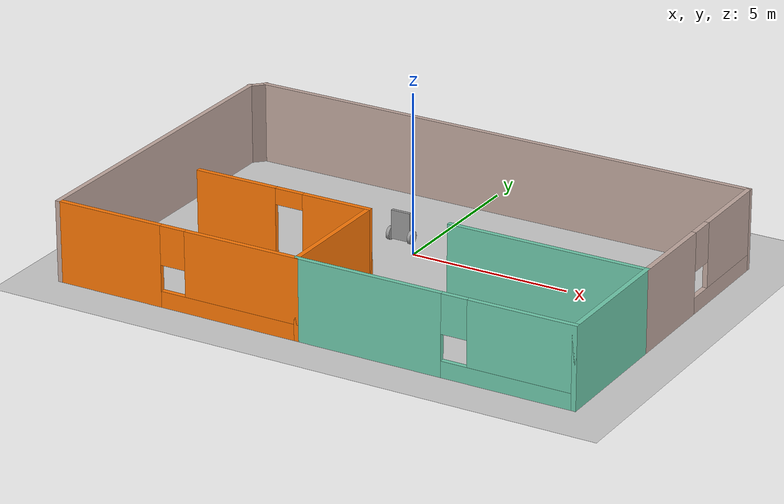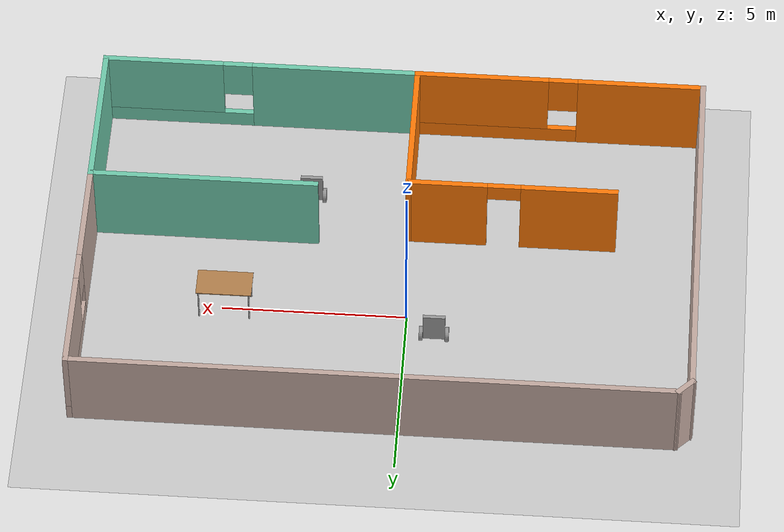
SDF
<sdf version="1.6">
 <world name="default">
  <plugin name="welcome_message" filename="libwelcome_message.so"/>
  <light name="sun" type="directional">
   <pose>0 0 10 0 -0 0</pose>
   <diffuse>0.8 0.8 0.8 1</diffuse>
   <specular>0.1 0.1 0.1 1</specular>
   <attenuation>
    <range>1000</range>
    <constant>0.9</constant>
    <linear>0.01</linear>
    <quadratic>0.001</quadratic>
   </attenuation>
   <direction>-0.5 0.5 -1</direction>
  </light>
  <model name="ground_plane">
   <static>1</static>
   <link name="link">
    <collision name="collision">
     <geometry><plane><normal>0 0 1</normal><size>100 100</size></plane></geometry>
     <surface><friction><ode><mu>100</mu><mu2>50</mu2></ode></friction></surface>
    </collision>
    <visual name="visual">
     <cast_shadows>0</cast_shadows>
     <geometry><plane><normal>0 0 1</normal><size>100 100</size></plane></geometry>
     <material>
      <script><uri>file://media/materials/scripts/gazebo.material</uri><name>Gazebo/Grey</name></script>
     </material>
    </visual>
   </link>
  </model>
  <gravity>0 0 -9.8</gravity>
  <magnetic_field>6e-06 2.3e-05 -4.2e-05</magnetic_field>
  <atmosphere type="adiabatic"/>
  <physics name="default_physics" default="0" type="ode">
   <max_step_size>0.001</max_step_size>
   <real_time_factor>1</real_time_factor>
   <real_time_update_rate>1000</real_time_update_rate>
  </physics>
  <scene><ambient>0.4 0.4 0.4 1</ambient><background>0.7 0.7 0.7 1</background><shadows>1</shadows></scene>
  <spherical_coordinates>
   <surface_model>EARTH_WGS84</surface_model>
   <latitude_deg>0</latitude_deg>
   <longitude_deg>0</longitude_deg>
   <elevation>0</elevation>
   <heading_deg>0</heading_deg>
  </spherical_coordinates>
  <model name="project1_robot">
   <link name="link_0">
    <pose>-0.000665 0 0.199997 0 -0 0</pose>
    <inertial>
     <mass>1</mass>
     <inertia>
      <ixx>0.166667</ixx>
      <ixy>0</ixy>
      <ixz>0</ixz>
      <iyy>0.166667</iyy>
      <iyz>0</iyz>
      <izz>0.166667</izz>
     </inertia>
    </inertial>
    <visual name="visual">
     <geometry><box><size>0.6 0.1 0.9</size></box></geometry>
     <material>
      <lighting>1</lighting>
      <script><uri>file://media/materials/scripts/gazebo.material</uri><name>Gazebo/Grey</name></script>
      <shader type="pixel"><normal_map>__default__</normal_map></shader>
      <ambient>0.3 0.3 0.3 1</ambient>
      <diffuse>0.7 0.7 0.7 1</diffuse>
      <specular>0.01 0.01 0.01 1</specular>
      <emissive>0 0 0 1</emissive>
     </material>
    </visual>
    <collision name="collision">
     <geometry><box><size>0.6 0.1 1</size></box></geometry>
     <surface>
      <friction>
       <ode><mu>1</mu><mu2>1</mu2><fdir1>0 0 0</fdir1><slip1>0</slip1><slip2>0</slip2></ode>
       <torsional>
        <coefficient>1</coefficient>
        <patch_radius>0</patch_radius>
        <surface_radius>0</surface_radius>
        <use_patch_radius>1</use_patch_radius>
        <ode><slip>0</slip></ode>
       </torsional>
      </friction>
      <bounce><restitution_coefficient>0</restitution_coefficient><threshold>1e+06</threshold></bounce>
      <contact>
       <collide_without_contact>0</collide_without_contact>
       <collide_without_contact_bitmask>1</collide_without_contact_bitmask>
       <collide_bitmask>1</collide_bitmask>
       <ode>
        <soft_cfm>0</soft_cfm>
        <soft_erp>0.2</soft_erp>
        <kp>1e+13</kp>
        <kd>1</kd>
        <max_vel>0.01</max_vel>
        <min_depth>0</min_depth>
       </ode>
       <bullet>
        <split_impulse>1</split_impulse>
        <split_impulse_penetration_threshold>-0.01</split_impulse_penetration_threshold>
        <soft_cfm>0</soft_cfm>
        <soft_erp>0.2</soft_erp>
        <kp>1e+13</kp>
        <kd>1</kd>
       </bullet>
      </contact>
     </surface>
    </collision>
   </link>
   <link name="link_1">
    <pose>0.351352 -0 -0.099508 0 -0.01 0</pose>
    <inertial>
     <mass>1</mass>
     <inertia><ixx>0.145833</ixx><ixy>0</ixy><ixz>0</ixz><iyy>0.145833</iyy><iyz>0</iyz><izz>0.125</izz></inertia>
    </inertial>
    <visual name="visual">
     <pose>0 0 0 0 1.5707 0</pose>
     <geometry><cylinder><radius>0.2</radius><length>0.1</length></cylinder></geometry>
     <material>
      <lighting>1</lighting>
      <script><uri>file://media/materials/scripts/gazebo.material</uri><name>Gazebo/Grey</name></script>
      <shader type="pixel"><normal_map>__default__</normal_map></shader>
      <ambient>0.3 0.3 0.3 1</ambient>
      <diffuse>0.7 0.7 0.7 1</diffuse>
      <specular>0.01 0.01 0.01 1</specular>
      <emissive>0 0 0 1</emissive>
     </material>
    </visual>
    <collision name="collision">
     <pose>0 0 0 0 1.5707 0</pose>
     <geometry><cylinder><radius>0.2</radius><length>0.1</length></cylinder></geometry>
     <surface>
      <friction>
       <ode><mu>1</mu><mu2>1</mu2><fdir1>0 0 0</fdir1><slip1>0</slip1><slip2>0</slip2></ode>
       <torsional>
        <coefficient>1</coefficient>
        <patch_radius>0</patch_radius>
        <surface_radius>0</surface_radius>
        <use_patch_radius>1</use_patch_radius>
        <ode><slip>0</slip></ode>
       </torsional>
      </friction>
      <bounce><restitution_coefficient>0</restitution_coefficient><threshold>1e+06</threshold></bounce>
      <contact>
       <collide_without_contact>0</collide_without_contact>
       <collide_without_contact_bitmask>1</collide_without_contact_bitmask>
       <collide_bitmask>1</collide_bitmask>
       <ode>
        <soft_cfm>0</soft_cfm>
        <soft_erp>0.2</soft_erp>
        <kp>1e+13</kp>
        <kd>1</kd>
        <max_vel>0.01</max_vel>
        <min_depth>0</min_depth>
       </ode>
       <bullet>
        <split_impulse>1</split_impulse>
        <split_impulse_penetration_threshold>-0.01</split_impulse_penetration_threshold>
        <soft_cfm>0</soft_cfm>
        <soft_erp>0.2</soft_erp>
        <kp>1e+13</kp>
        <kd>1</kd>
       </bullet>
      </contact>
     </surface>
    </collision>
   </link>
   <link name="link_1_clone">
    <pose>-0.350684 0 -0.099999 0 -0 0</pose>
    <inertial>
     <mass>1</mass>
     <inertia><ixx>0.145833</ixx><ixy>0</ixy><ixz>0</ixz><iyy>0.145833</iyy><iyz>0</iyz><izz>0.125</izz></inertia>
    </inertial>
    <visual name="visual">
     <pose>0 0 0 0 1.5707 0</pose>
     <geometry><cylinder><radius>0.2</radius><length>0.1</length></cylinder></geometry>
     <material>
      <lighting>1</lighting>
      <script><uri>file://media/materials/scripts/gazebo.material</uri><name>Gazebo/Grey</name></script>
      <shader type="pixel"><normal_map>__default__</normal_map></shader>
      <ambient>0.3 0.3 0.3 1</ambient>
      <diffuse>0.7 0.7 0.7 1</diffuse>
      <specular>0.01 0.01 0.01 1</specular>
      <emissive>0 0 0 1</emissive>
     </material>
    </visual>
    <collision name="collision">
     <pose>0 0 0 0 1.5707 0</pose>
     <geometry><cylinder><radius>0.2</radius><length>0.1</length></cylinder></geometry>
     <surface>
      <friction>
       <ode><mu>1</mu><mu2>1</mu2><fdir1>0 0 0</fdir1><slip1>0</slip1><slip2>0</slip2></ode>
       <torsional>
        <coefficient>1</coefficient>
        <patch_radius>0</patch_radius>
        <surface_radius>0</surface_radius>
        <use_patch_radius>1</use_patch_radius>
        <ode><slip>0</slip></ode>
       </torsional>
      </friction>
      <bounce><restitution_coefficient>0</restitution_coefficient><threshold>1e+06</threshold></bounce>
      <contact>
       <collide_without_contact>0</collide_without_contact>
       <collide_without_contact_bitmask>1</collide_without_contact_bitmask>
       <collide_bitmask>1</collide_bitmask>
       <ode>
        <soft_cfm>0</soft_cfm>
        <soft_erp>0.2</soft_erp>
        <kp>1e+13</kp>
        <kd>1</kd>
        <max_vel>0.01</max_vel>
        <min_depth>0</min_depth>
       </ode>
       <bullet>
        <split_impulse>1</split_impulse>
        <split_impulse_penetration_threshold>-0.01</split_impulse_penetration_threshold>
        <soft_cfm>0</soft_cfm>
        <soft_erp>0.2</soft_erp>
        <kp>1e+13</kp>
        <kd>1</kd>
       </bullet>
      </contact>
     </surface>
    </collision>
   </link>
   <joint name="link_0_JOINT_1" type="revolute2">
    <parent>link_0</parent>
    <child>link_1</child>
    <axis>
     <xyz>1 0 0</xyz>
     <use_parent_model_frame>0</use_parent_model_frame>
     <limit>
      <lower>-1.79769e+308</lower>
      <upper>1.79769e+308</upper>
      <effort>-1</effort>
      <velocity>-1</velocity>
     </limit>
     <dynamics>
      <spring_reference>0</spring_reference>
      <spring_stiffness>0</spring_stiffness>
      <damping>0</damping>
     </dynamics>
    </axis>
    <axis2>
     <xyz>0 1 0</xyz>
     <use_parent_model_frame>0</use_parent_model_frame>
     <dynamics>
      <spring_reference>0</spring_reference>
      <spring_stiffness>0</spring_stiffness>
      <damping>0</damping>
     </dynamics>
     <limit>
      <lower>-1.79769e+308</lower>
      <upper>1.79769e+308</upper>
      <effort>-1</effort>
      <velocity>-1</velocity>
     </limit>
    </axis2>
    <physics>
     <ode><limit><cfm>0</cfm><erp>0.2</erp></limit><suspension><cfm>0</cfm><erp>0.2</erp></suspension></ode>
    </physics>
   </joint>
   <joint name="link_1_clone_JOINT_2" type="revolute2">
    <parent>link_0</parent>
    <child>link_1_clone</child>
    <axis>
     <xyz>1 0 0</xyz>
     <use_parent_model_frame>0</use_parent_model_frame>
     <limit>
      <lower>-1.79769e+308</lower>
      <upper>1.79769e+308</upper>
      <effort>-1</effort>
      <velocity>-1</velocity>
     </limit>
     <dynamics>
      <spring_reference>0</spring_reference>
      <spring_stiffness>0</spring_stiffness>
      <damping>0</damping>
     </dynamics>
    </axis>
    <axis2>
     <xyz>0 1 0</xyz>
     <use_parent_model_frame>0</use_parent_model_frame>
     <dynamics>
      <spring_reference>0</spring_reference>
      <spring_stiffness>0</spring_stiffness>
      <damping>0</damping>
     </dynamics>
     <limit>
      <lower>-1.79769e+308</lower>
      <upper>1.79769e+308</upper>
      <effort>-1</effort>
      <velocity>-1</velocity>
     </limit>
    </axis2>
    <physics>
     <ode><limit><cfm>0</cfm><erp>0.2</erp></limit><suspension><cfm>0</cfm><erp>0.2</erp></suspension></ode>
    </physics>
   </joint>
   <static>0</static>
   <pose>-0.781165 0.648653 0.300123 0 0.000402 0.007167</pose>
  </model>
  <model name="table">
   <static>1</static>
   <link name="link">
    <collision name="surface">
     <pose>0 0 1 0 -0 0</pose>
     <geometry><box><size>1.5 0.8 0.03</size></box></geometry>
     <surface><friction><ode><mu>0.6</mu><mu2>0.6</mu2></ode></friction></surface>
    </collision>
    <visual name="visual1">
     <pose>0 0 1 0 -0 0</pose>
     <geometry><box><size>1.5 0.8 0.03</size></box></geometry>
     <material>
      <script><uri>file://media/materials/scripts/gazebo.material</uri><name>Gazebo/Wood</name></script>
     </material>
    </visual>
    <collision name="front_left_leg">
     <pose>0.68 0.38 0.5 0 -0 0</pose>
     <geometry><cylinder><radius>0.02</radius><length>1</length></cylinder></geometry>
    </collision>
    <visual name="front_left_leg">
     <pose>0.68 0.38 0.5 0 -0 0</pose>
     <geometry><cylinder><radius>0.02</radius><length>1</length></cylinder></geometry>
     <material>
      <script><uri>file://media/materials/scripts/gazebo.material</uri><name>Gazebo/Grey</name></script>
     </material>
    </visual>
    <collision name="front_right_leg">
     <pose>0.68 -0.38 0.5 0 -0 0</pose>
     <geometry><cylinder><radius>0.02</radius><length>1</length></cylinder></geometry>
    </collision>
    <visual name="front_right_leg">
     <pose>0.68 -0.38 0.5 0 -0 0</pose>
     <geometry><cylinder><radius>0.02</radius><length>1</length></cylinder></geometry>
     <material>
      <script><uri>file://media/materials/scripts/gazebo.material</uri><name>Gazebo/Grey</name></script>
     </material>
    </visual>
    <collision name="back_right_leg">
     <pose>-0.68 -0.38 0.5 0 -0 0</pose>
     <geometry><cylinder><radius>0.02</radius><length>1</length></cylinder></geometry>
    </collision>
    <visual name="back_right_leg">
     <pose>-0.68 -0.38 0.5 0 -0 0</pose>
     <geometry><cylinder><radius>0.02</radius><length>1</length></cylinder></geometry>
     <material>
      <script><uri>file://media/materials/scripts/gazebo.material</uri><name>Gazebo/Grey</name></script>
     </material>
    </visual>
    <collision name="back_left_leg">
     <pose>-0.68 0.38 0.5 0 -0 0</pose>
     <geometry><cylinder><radius>0.02</radius><length>1</length></cylinder></geometry>
    </collision>
    <visual name="back_left_leg">
     <pose>-0.68 0.38 0.5 0 -0 0</pose>
     <geometry><cylinder><radius>0.02</radius><length>1</length></cylinder></geometry>
     <material>
      <script><uri>file://media/materials/scripts/gazebo.material</uri><name>Gazebo/Grey</name></script>
     </material>
    </visual>
   </link>
   <pose>4.91982 -0.080805 0 0 -0 0</pose>
  </model>
  <model name="beer">
   <link name="link">
    <pose>0 0 0.115 0 -0 0</pose>
    <inertial>
     <mass>0.39</mass>
     <inertia><ixx>0.00058</ixx><ixy>0</ixy><ixz>0</ixz><iyy>0.00058</iyy><iyz>0</iyz><izz>0.00019</izz></inertia>
    </inertial>
    <collision name="collision">
     <geometry><cylinder><radius>0.055</radius><length>0.23</length></cylinder></geometry>
    </collision>
    <visual name="visual">
     <geometry><cylinder><radius>0.055</radius><length>0.23</length></cylinder></geometry>
     <material>
      <script>
       <uri>model://beer/materials/scripts</uri>
       <uri>model://beer/materials/textures</uri>
       <name>Beer/Diffuse</name>
      </script>
     </material>
    </visual>
   </link>
   <pose>-5.06977 -3.53298 -2e-06 1e-06 -0 -1.1e-05</pose>
  </model>
  <model name="project1_robot_0">
   <link name="link_0">
    <pose>-0.000665 0 0.199997 0 -0 0</pose>
    <inertial>
     <mass>1</mass>
     <inertia>
      <ixx>0.166667</ixx>
      <ixy>0</ixy>
      <ixz>0</ixz>
      <iyy>0.166667</iyy>
      <iyz>0</iyz>
      <izz>0.166667</izz>
     </inertia>
    </inertial>
    <visual name="visual">
     <geometry><box><size>0.6 0.1 0.9</size></box></geometry>
     <material>
      <lighting>1</lighting>
      <script><uri>file://media/materials/scripts/gazebo.material</uri><name>Gazebo/Grey</name></script>
      <shader type="pixel"><normal_map>__default__</normal_map></shader>
      <ambient>0.3 0.3 0.3 1</ambient>
      <diffuse>0.7 0.7 0.7 1</diffuse>
      <specular>0.01 0.01 0.01 1</specular>
      <emissive>0 0 0 1</emissive>
     </material>
    </visual>
    <collision name="collision">
     <geometry><box><size>0.6 0.1 1</size></box></geometry>
     <surface>
      <friction>
       <ode><mu>1</mu><mu2>1</mu2><fdir1>0 0 0</fdir1><slip1>0</slip1><slip2>0</slip2></ode>
       <torsional>
        <coefficient>1</coefficient>
        <patch_radius>0</patch_radius>
        <surface_radius>0</surface_radius>
        <use_patch_radius>1</use_patch_radius>
        <ode><slip>0</slip></ode>
       </torsional>
      </friction>
      <bounce><restitution_coefficient>0</restitution_coefficient><threshold>1e+06</threshold></bounce>
      <contact>
       <collide_without_contact>0</collide_without_contact>
       <collide_without_contact_bitmask>1</collide_without_contact_bitmask>
       <collide_bitmask>1</collide_bitmask>
       <ode>
        <soft_cfm>0</soft_cfm>
        <soft_erp>0.2</soft_erp>
        <kp>1e+13</kp>
        <kd>1</kd>
        <max_vel>0.01</max_vel>
        <min_depth>0</min_depth>
       </ode>
       <bullet>
        <split_impulse>1</split_impulse>
        <split_impulse_penetration_threshold>-0.01</split_impulse_penetration_threshold>
        <soft_cfm>0</soft_cfm>
        <soft_erp>0.2</soft_erp>
        <kp>1e+13</kp>
        <kd>1</kd>
       </bullet>
      </contact>
     </surface>
    </collision>
   </link>
   <link name="link_1">
    <pose>0.351352 -0 -0.099508 0 -0.01 0</pose>
    <inertial>
     <mass>1</mass>
     <inertia><ixx>0.145833</ixx><ixy>0</ixy><ixz>0</ixz><iyy>0.145833</iyy><iyz>0</iyz><izz>0.125</izz></inertia>
    </inertial>
    <visual name="visual">
     <pose>0 0 0 0 1.5707 0</pose>
     <geometry><cylinder><radius>0.2</radius><length>0.1</length></cylinder></geometry>
     <material>
      <lighting>1</lighting>
      <script><uri>file://media/materials/scripts/gazebo.material</uri><name>Gazebo/Grey</name></script>
      <shader type="pixel"><normal_map>__default__</normal_map></shader>
      <ambient>0.3 0.3 0.3 1</ambient>
      <diffuse>0.7 0.7 0.7 1</diffuse>
      <specular>0.01 0.01 0.01 1</specular>
      <emissive>0 0 0 1</emissive>
     </material>
    </visual>
    <collision name="collision">
     <pose>0 0 0 0 1.5707 0</pose>
     <geometry><cylinder><radius>0.2</radius><length>0.1</length></cylinder></geometry>
     <surface>
      <friction>
       <ode><mu>1</mu><mu2>1</mu2><fdir1>0 0 0</fdir1><slip1>0</slip1><slip2>0</slip2></ode>
       <torsional>
        <coefficient>1</coefficient>
        <patch_radius>0</patch_radius>
        <surface_radius>0</surface_radius>
        <use_patch_radius>1</use_patch_radius>
        <ode><slip>0</slip></ode>
       </torsional>
      </friction>
      <bounce><restitution_coefficient>0</restitution_coefficient><threshold>1e+06</threshold></bounce>
      <contact>
       <collide_without_contact>0</collide_without_contact>
       <collide_without_contact_bitmask>1</collide_without_contact_bitmask>
       <collide_bitmask>1</collide_bitmask>
       <ode>
        <soft_cfm>0</soft_cfm>
        <soft_erp>0.2</soft_erp>
        <kp>1e+13</kp>
        <kd>1</kd>
        <max_vel>0.01</max_vel>
        <min_depth>0</min_depth>
       </ode>
       <bullet>
        <split_impulse>1</split_impulse>
        <split_impulse_penetration_threshold>-0.01</split_impulse_penetration_threshold>
        <soft_cfm>0</soft_cfm>
        <soft_erp>0.2</soft_erp>
        <kp>1e+13</kp>
        <kd>1</kd>
       </bullet>
      </contact>
     </surface>
    </collision>
   </link>
   <link name="link_1_clone">
    <pose>-0.350684 0 -0.099999 0 -0 0</pose>
    <inertial>
     <mass>1</mass>
     <inertia><ixx>0.145833</ixx><ixy>0</ixy><ixz>0</ixz><iyy>0.145833</iyy><iyz>0</iyz><izz>0.125</izz></inertia>
    </inertial>
    <visual name="visual">
     <pose>0 0 0 0 1.5707 0</pose>
     <geometry><cylinder><radius>0.2</radius><length>0.1</length></cylinder></geometry>
     <material>
      <lighting>1</lighting>
      <script><uri>file://media/materials/scripts/gazebo.material</uri><name>Gazebo/Grey</name></script>
      <shader type="pixel"><normal_map>__default__</normal_map></shader>
      <ambient>0.3 0.3 0.3 1</ambient>
      <diffuse>0.7 0.7 0.7 1</diffuse>
      <specular>0.01 0.01 0.01 1</specular>
      <emissive>0 0 0 1</emissive>
     </material>
    </visual>
    <collision name="collision">
     <pose>0 0 0 0 1.5707 0</pose>
     <geometry><cylinder><radius>0.2</radius><length>0.1</length></cylinder></geometry>
     <surface>
      <friction>
       <ode><mu>1</mu><mu2>1</mu2><fdir1>0 0 0</fdir1><slip1>0</slip1><slip2>0</slip2></ode>
       <torsional>
        <coefficient>1</coefficient>
        <patch_radius>0</patch_radius>
        <surface_radius>0</surface_radius>
        <use_patch_radius>1</use_patch_radius>
        <ode><slip>0</slip></ode>
       </torsional>
      </friction>
      <bounce><restitution_coefficient>0</restitution_coefficient><threshold>1e+06</threshold></bounce>
      <contact>
       <collide_without_contact>0</collide_without_contact>
       <collide_without_contact_bitmask>1</collide_without_contact_bitmask>
       <collide_bitmask>1</collide_bitmask>
       <ode>
        <soft_cfm>0</soft_cfm>
        <soft_erp>0.2</soft_erp>
        <kp>1e+13</kp>
        <kd>1</kd>
        <max_vel>0.01</max_vel>
        <min_depth>0</min_depth>
       </ode>
       <bullet>
        <split_impulse>1</split_impulse>
        <split_impulse_penetration_threshold>-0.01</split_impulse_penetration_threshold>
        <soft_cfm>0</soft_cfm>
        <soft_erp>0.2</soft_erp>
        <kp>1e+13</kp>
        <kd>1</kd>
       </bullet>
      </contact>
     </surface>
    </collision>
   </link>
   <joint name="link_0_JOINT_1" type="revolute2">
    <parent>link_0</parent>
    <child>link_1</child>
    <axis>
     <xyz>1 0 0</xyz>
     <use_parent_model_frame>0</use_parent_model_frame>
     <limit>
      <lower>-1.79769e+308</lower>
      <upper>1.79769e+308</upper>
      <effort>-1</effort>
      <velocity>-1</velocity>
     </limit>
     <dynamics>
      <spring_reference>0</spring_reference>
      <spring_stiffness>0</spring_stiffness>
      <damping>0</damping>
     </dynamics>
    </axis>
    <axis2>
     <xyz>0 1 0</xyz>
     <use_parent_model_frame>0</use_parent_model_frame>
     <dynamics>
      <spring_reference>0</spring_reference>
      <spring_stiffness>0</spring_stiffness>
      <damping>0</damping>
     </dynamics>
     <limit>
      <lower>-1.79769e+308</lower>
      <upper>1.79769e+308</upper>
      <effort>-1</effort>
      <velocity>-1</velocity>
     </limit>
    </axis2>
    <physics>
     <ode><limit><cfm>0</cfm><erp>0.2</erp></limit><suspension><cfm>0</cfm><erp>0.2</erp></suspension></ode>
    </physics>
   </joint>
   <joint name="link_1_clone_JOINT_2" type="revolute2">
    <parent>link_0</parent>
    <child>link_1_clone</child>
    <axis>
     <xyz>1 0 0</xyz>
     <use_parent_model_frame>0</use_parent_model_frame>
     <limit>
      <lower>-1.79769e+308</lower>
      <upper>1.79769e+308</upper>
      <effort>-1</effort>
      <velocity>-1</velocity>
     </limit>
     <dynamics>
      <spring_reference>0</spring_reference>
      <spring_stiffness>0</spring_stiffness>
      <damping>0</damping>
     </dynamics>
    </axis>
    <axis2>
     <xyz>0 1 0</xyz>
     <use_parent_model_frame>0</use_parent_model_frame>
     <dynamics>
      <spring_reference>0</spring_reference>
      <spring_stiffness>0</spring_stiffness>
      <damping>0</damping>
     </dynamics>
     <limit>
      <lower>-1.79769e+308</lower>
      <upper>1.79769e+308</upper>
      <effort>-1</effort>
      <velocity>-1</velocity>
     </limit>
    </axis2>
    <physics>
     <ode><limit><cfm>0</cfm><erp>0.2</erp></limit><suspension><cfm>0</cfm><erp>0.2</erp></suspension></ode>
    </physics>
   </joint>
   <static>0</static>
   <pose>2.86112 -3.96129 0.3001 -0 0.000324 0.006357</pose>
  </model>
  <model name="house">
   <pose>0.488985 -1.33717 0 0 -0 0</pose>
   <link name="Wall_0">
    <collision name="Wall_0_Collision">
     <geometry><box><size>10.25 0.15 2.5</size></box></geometry>
     <pose>0 0 1.25 0 -0 0</pose>
    </collision>
    <visual name="Wall_0_Visual">
     <pose>0 0 1.25 0 -0 0</pose>
     <geometry><box><size>10.25 0.15 2.5</size></box></geometry>
     <material>
      <script><uri>file://media/materials/scripts/gazebo.material</uri><name>Gazebo/Grey</name></script>
      <ambient>0.760784 0.662745 0.627451 1</ambient>
     </material>
     <meta><layer>0</layer></meta>
    </visual>
    <pose>-8.20947 -0.190533 0 0 0 -1.5708</pose>
   </link>
   <link name="Wall_10">
    <pose>8.24053 2.03447 0 0 -0 1.5708</pose>
    <visual name="Wall_10_Visual_0">
     <pose>-1.78129 0 1.25 0 -0 0</pose>
     <geometry><box><size>2.93743 0.15 2.5</size></box></geometry>
     <material>
      <script><uri>file://media/materials/scripts/gazebo.material</uri><name>Gazebo/Grey</name></script>
      <ambient>0.760784 0.662745 0.627451 1</ambient>
     </material>
     <meta><layer>0</layer></meta>
    </visual>
    <collision name="Wall_10_Collision_0">
     <geometry><box><size>2.93743 0.15 2.5</size></box></geometry>
     <pose>-1.78129 0 1.25 0 -0 0</pose>
    </collision>
    <visual name="Wall_10_Visual_1">
     <pose>1.46871 0 0.25 0 -0 0</pose>
     <geometry><box><size>3.56257 0.15 0.5</size></box></geometry>
     <material>
      <script><uri>file://media/materials/scripts/gazebo.material</uri><name>Gazebo/Grey</name></script>
      <ambient>0.760784 0.662745 0.627451 1</ambient>
     </material>
     <meta><layer>0</layer></meta>
    </visual>
    <collision name="Wall_10_Collision_1">
     <geometry><box><size>3.56257 0.15 0.5</size></box></geometry>
     <pose>1.46871 0 0.25 0 -0 0</pose>
    </collision>
    <visual name="Wall_10_Visual_2">
     <pose>1.86871 0 1.5 0 -0 0</pose>
     <geometry><box><size>2.76258 0.15 2</size></box></geometry>
     <material>
      <script><uri>file://media/materials/scripts/gazebo.material</uri><name>Gazebo/Grey</name></script>
      <ambient>0.760784 0.662745 0.627451 1</ambient>
     </material>
     <meta><layer>0</layer></meta>
    </visual>
    <collision name="Wall_10_Collision_2">
     <geometry><box><size>2.76258 0.15 2</size></box></geometry>
     <pose>1.86871 0 1.5 0 -0 0</pose>
    </collision>
    <visual name="Wall_10_Visual_3">
     <pose>0.087425 0 1.9 0 -0 0</pose>
     <geometry><box><size>0.8 0.15 1.2</size></box></geometry>
     <material>
      <script><uri>file://media/materials/scripts/gazebo.material</uri><name>Gazebo/Grey</name></script>
      <ambient>0.760784 0.662745 0.627451 1</ambient>
     </material>
     <meta><layer>0</layer></meta>
    </visual>
    <collision name="Wall_10_Collision_3">
     <geometry><box><size>0.8 0.15 1.2</size></box></geometry>
     <pose>0.087425 0 1.9 0 -0 0</pose>
    </collision>
   </link>
   <link name="Wall_11">
    <collision name="Wall_11_Collision">
     <geometry><box><size>16.25 0.15 2.5</size></box></geometry>
     <pose>0 0 1.25 0 -0 0</pose>
    </collision>
    <visual name="Wall_11_Visual">
     <pose>0 0 1.25 0 -0 0</pose>
     <geometry><box><size>16.25 0.15 2.5</size></box></geometry>
     <material>
      <script><uri>file://media/materials/scripts/gazebo.material</uri><name>Gazebo/Grey</name></script>
      <ambient>0.760784 0.662745 0.627451 1</ambient>
     </material>
     <meta><layer>0</layer></meta>
    </visual>
    <pose>0.190533 5.20947 0 0 -0 3.14159</pose>
   </link>
   <link name="Wall_12">
    <collision name="Wall_12_Collision">
     <geometry><box><size>0.644975 0.15 2.5</size></box></geometry>
     <pose>0 0 1.25 0 -0 0</pose>
    </collision>
    <visual name="Wall_12_Visual">
     <pose>0 0 1.25 0 -0 0</pose>
     <geometry><box><size>0.644975 0.15 2.5</size></box></geometry>
     <material>
      <script><uri>file://media/materials/scripts/gazebo.material</uri><name>Gazebo/Grey</name></script>
      <ambient>0.760784 0.662745 0.627451 1</ambient>
     </material>
     <meta><layer>0</layer></meta>
    </visual>
    <pose>-8.03447 5.03447 0 0 0 -2.35619</pose>
   </link>
   <link name="Wall_2">
    <pose>-4.28447 -5.24053 0 0 -0 0</pose>
    <visual name="Wall_2_Visual_0">
     <pose>-2.2462 0 1.25 0 -0 0</pose>
     <geometry><box><size>3.5076 0.15 2.5</size></box></geometry>
     <material>
      <script><uri>file://media/materials/scripts/gazebo.material</uri><name>Gazebo/Grey</name></script>
      <ambient>0.996078 0.47451 0.0196078 1</ambient>
     </material>
     <meta><layer>0</layer></meta>
    </visual>
    <collision name="Wall_2_Collision_0">
     <geometry><box><size>3.5076 0.15 2.5</size></box></geometry>
     <pose>-2.2462 0 1.25 0 -0 0</pose>
    </collision>
    <visual name="Wall_2_Visual_1">
     <pose>1.7538 0 0.25 0 -0 0</pose>
     <geometry><box><size>4.4924 0.15 0.5</size></box></geometry>
     <material>
      <script><uri>file://media/materials/scripts/gazebo.material</uri><name>Gazebo/Grey</name></script>
      <ambient>0.996078 0.47451 0.0196078 1</ambient>
     </material>
     <meta><layer>0</layer></meta>
    </visual>
    <collision name="Wall_2_Collision_1">
     <geometry><box><size>4.4924 0.15 0.5</size></box></geometry>
     <pose>1.7538 0 0.25 0 -0 0</pose>
    </collision>
    <visual name="Wall_2_Visual_2">
     <pose>2.1538 0 1.5 0 -0 0</pose>
     <geometry><box><size>3.69239 0.15 2</size></box></geometry>
     <material>
      <script><uri>file://media/materials/scripts/gazebo.material</uri><name>Gazebo/Grey</name></script>
      <ambient>0.996078 0.47451 0.0196078 1</ambient>
     </material>
     <meta><layer>0</layer></meta>
    </visual>
    <collision name="Wall_2_Collision_2">
     <geometry><box><size>3.69239 0.15 2</size></box></geometry>
     <pose>2.1538 0 1.5 0 -0 0</pose>
    </collision>
    <visual name="Wall_2_Visual_3">
     <pose>-0.092395 0 1.9 0 -0 0</pose>
     <geometry><box><size>0.8 0.15 1.2</size></box></geometry>
     <material>
      <script><uri>file://media/materials/scripts/gazebo.material</uri><name>Gazebo/Grey</name></script>
      <ambient>0.996078 0.47451 0.0196078 1</ambient>
     </material>
     <meta><layer>0</layer></meta>
    </visual>
    <collision name="Wall_2_Collision_3">
     <geometry><box><size>0.8 0.15 1.2</size></box></geometry>
     <pose>-0.092395 0 1.9 0 -0 0</pose>
    </collision>
   </link>
   <link name="Wall_3">
    <collision name="Wall_3_Collision">
     <geometry><box><size>4 0.15 2.5</size></box></geometry>
     <pose>0 0 1.25 0 -0 0</pose>
    </collision>
    <visual name="Wall_3_Visual">
     <pose>0 0 1.25 0 -0 0</pose>
     <geometry><box><size>4 0.15 2.5</size></box></geometry>
     <material>
      <script><uri>file://media/materials/scripts/gazebo.material</uri><name>Gazebo/Grey</name></script>
      <ambient>0.996078 0.47451 0.0196078 1</ambient>
     </material>
     <meta><layer>0</layer></meta>
    </visual>
    <pose>-0.359467 -3.31553 0 0 -0 1.5708</pose>
   </link>
   <link name="Wall_4">
    <pose>-3.15947 -1.39053 0 0 -0 3.14159</pose>
    <visual name="Wall_4_Visual_0">
     <pose>-1.76861 0 1.25 0 -0 0</pose>
     <geometry><box><size>2.21277 0.15 2.5</size></box></geometry>
     <material>
      <script><uri>file://media/materials/scripts/gazebo.material</uri><name>Gazebo/Grey</name></script>
      <ambient>0.996078 0.47451 0.0196078 1</ambient>
     </material>
     <meta><layer>0</layer></meta>
    </visual>
    <collision name="Wall_4_Collision_0">
     <geometry><box><size>2.21277 0.15 2.5</size></box></geometry>
     <pose>-1.76861 0 1.25 0 -0 0</pose>
    </collision>
    <visual name="Wall_4_Visual_1">
     <pose>1.55639 0 1.25 0 -0 0</pose>
     <geometry><box><size>2.63723 0.15 2.5</size></box></geometry>
     <material>
      <script><uri>file://media/materials/scripts/gazebo.material</uri><name>Gazebo/Grey</name></script>
      <ambient>0.996078 0.47451 0.0196078 1</ambient>
     </material>
     <meta><layer>0</layer></meta>
    </visual>
    <collision name="Wall_4_Collision_1">
     <geometry><box><size>2.63723 0.15 2.5</size></box></geometry>
     <pose>1.55639 0 1.25 0 -0 0</pose>
    </collision>
    <visual name="Wall_4_Visual_2">
     <pose>-0.212228 0 2.25 0 -0 0</pose>
     <geometry><box><size>0.9 0.15 0.5</size></box></geometry>
     <material>
      <script><uri>file://media/materials/scripts/gazebo.material</uri><name>Gazebo/Grey</name></script>
      <ambient>0.996078 0.47451 0.0196078 1</ambient>
     </material>
     <meta><layer>0</layer></meta>
    </visual>
    <collision name="Wall_4_Collision_2">
     <geometry><box><size>0.9 0.15 0.5</size></box></geometry>
     <pose>-0.212228 0 2.25 0 -0 0</pose>
    </collision>
   </link>
   <link name="Wall_6">
    <pose>3.94053 -5.24053 0 0 -0 0</pose>
    <visual name="Wall_6_Visual_0">
     <pose>-2.05962 0 1.25 0 -0 0</pose>
     <geometry><box><size>4.63077 0.15 2.5</size></box></geometry>
     <material>
      <script><uri>file://media/materials/scripts/gazebo.material</uri><name>Gazebo/Grey</name></script>
      <ambient>0.435294 0.796078 0.67451 1</ambient>
     </material>
     <meta><layer>0</layer></meta>
    </visual>
    <collision name="Wall_6_Collision_0">
     <geometry><box><size>4.63077 0.15 2.5</size></box></geometry>
     <pose>-2.05962 0 1.25 0 -0 0</pose>
    </collision>
    <visual name="Wall_6_Visual_1">
     <pose>2.31538 0 0.25 0 -0 0</pose>
     <geometry><box><size>4.11923 0.15 0.5</size></box></geometry>
     <material>
      <script><uri>file://media/materials/scripts/gazebo.material</uri><name>Gazebo/Grey</name></script>
      <ambient>0.435294 0.796078 0.67451 1</ambient>
     </material>
     <meta><layer>0</layer></meta>
    </visual>
    <collision name="Wall_6_Collision_1">
     <geometry><box><size>4.11923 0.15 0.5</size></box></geometry>
     <pose>2.31538 0 0.25 0 -0 0</pose>
    </collision>
    <visual name="Wall_6_Visual_2">
     <pose>2.71538 0 1.5 0 -0 0</pose>
     <geometry><box><size>3.31923 0.15 2</size></box></geometry>
     <material>
      <script><uri>file://media/materials/scripts/gazebo.material</uri><name>Gazebo/Grey</name></script>
      <ambient>0.435294 0.796078 0.67451 1</ambient>
     </material>
     <meta><layer>0</layer></meta>
    </visual>
    <collision name="Wall_6_Collision_2">
     <geometry><box><size>3.31923 0.15 2</size></box></geometry>
     <pose>2.71538 0 1.5 0 -0 0</pose>
    </collision>
    <visual name="Wall_6_Visual_3">
     <pose>0.655767 0 1.9 0 -0 0</pose>
     <geometry><box><size>0.8 0.15 1.2</size></box></geometry>
     <material>
      <script><uri>file://media/materials/scripts/gazebo.material</uri><name>Gazebo/Grey</name></script>
      <ambient>0.435294 0.796078 0.67451 1</ambient>
     </material>
     <meta><layer>0</layer></meta>
    </visual>
    <collision name="Wall_6_Collision_3">
     <geometry><box><size>0.8 0.15 1.2</size></box></geometry>
     <pose>0.655767 0 1.9 0 -0 0</pose>
    </collision>
   </link>
   <link name="Wall_7">
    <collision name="Wall_7_Collision">
     <geometry><box><size>4.25 0.15 2.5</size></box></geometry>
     <pose>0 0 1.25 0 -0 0</pose>
    </collision>
    <visual name="Wall_7_Visual">
     <pose>0 0 1.25 0 -0 0</pose>
     <geometry><box><size>4.25 0.15 2.5</size></box></geometry>
     <material>
      <script><uri>file://media/materials/scripts/gazebo.material</uri><name>Gazebo/Grey</name></script>
      <ambient>0.435294 0.796078 0.67451 1</ambient>
     </material>
     <meta><layer>0</layer></meta>
    </visual>
    <pose>8.24053 -3.19053 0 0 -0 1.5708</pose>
   </link>
   <link name="Wall_8">
    <collision name="Wall_8_Collision">
     <geometry><box><size>6.25 0.15 2.5</size></box></geometry>
     <pose>0 0 1.25 0 -0 0</pose>
    </collision>
    <visual name="Wall_8_Visual">
     <pose>0 0 1.25 0 -0 0</pose>
     <geometry><box><size>6.25 0.15 2.5</size></box></geometry>
     <material>
      <script><uri>file://media/materials/scripts/gazebo.material</uri><name>Gazebo/Grey</name></script>
      <ambient>0.435294 0.796078 0.67451 1</ambient>
     </material>
     <meta><layer>0</layer></meta>
    </visual>
    <pose>5.19053 -1.14053 0 0 -0 3.14159</pose>
   </link>
   <static>1</static>
  </model>
 </world>
</sdf>
